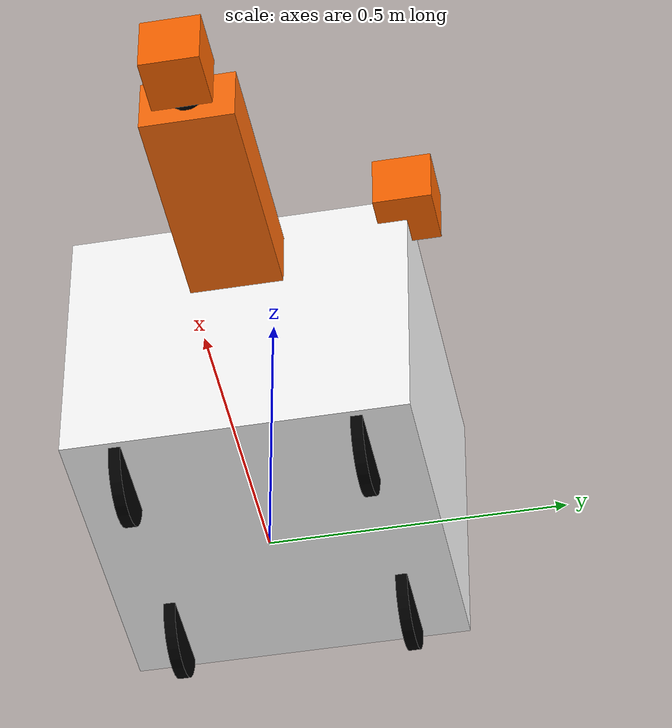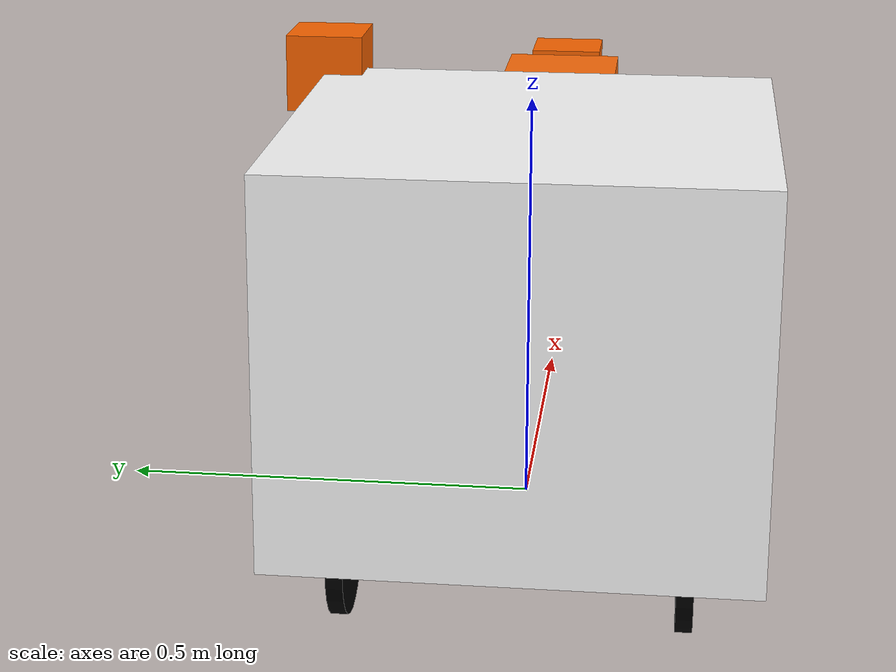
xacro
<?xml version="1.0" ?>
<!-- |    This document was autogenerated by xacro from engineer.urdf                  | -->
<!-- |    EDITING THIS FILE BY HAND IS NOT RECOMMENDED                                 | -->
<robot name="engineer">
  <link name="base_link">
    <visual>
      <origin rpy="0 0 0" xyz="0 0 0.236"/>
      <geometry>
        <box size="0.580 0.580 0.472"/>
      </geometry>
      <material name="white">
        <color rgba="1 1 1 1"/>
      </material>
    </visual>
  </link>
  <joint name="front_left_wheel_joint" type="continuous">
    <parent link="base_link"/>
    <child link="front_left_wheel"/>
    <origin rpy="1.57075 0 0" xyz="0.2 0.2 0"/>
    <axis xyz="0 0 1"/>
  </joint>
  <link name="front_left_wheel">
    <visual>
      <geometry>
        <cylinder length="0.02" radius="0.0791"/>
      </geometry>
      <material name="black">
        <color rgba="0 0 0 1"/>
      </material>
    </visual>
  </link>
  <joint name="front_right_wheel_joint" type="continuous">
    <parent link="base_link"/>
    <child link="front_right_wheel"/>
    <origin rpy="1.57075 0 0" xyz="0.2 -0.2 0"/>
    <axis xyz="0 0 1"/>
  </joint>
  <link name="front_right_wheel">
    <visual>
      <geometry>
        <cylinder length="0.02" radius="0.0791"/>
      </geometry>
      <material name="black">
        <color rgba="0 0 0 1"/>
      </material>
    </visual>
  </link>
  <joint name="rear_left_wheel_joint" type="continuous">
    <parent link="base_link"/>
    <child link="rear_left_wheel"/>
    <origin rpy="1.57075 0 0" xyz="-0.2 0.2 0"/>
    <axis xyz="0 0 1"/>
  </joint>
  <link name="rear_left_wheel">
    <visual>
      <geometry>
        <cylinder length="0.02" radius="0.0791"/>
      </geometry>
      <material name="black">
        <color rgba="0 0 0 1"/>
      </material>
    </visual>
  </link>
  <joint name="rear_right_wheel_joint" type="continuous">
    <parent link="base_link"/>
    <child link="rear_right_wheel"/>
    <origin rpy="1.57075 0 0" xyz="-0.2 -0.2 0"/>
    <axis xyz="0 0 1"/>
  </joint>
  <link name="rear_right_wheel">
    <visual>
      <geometry>
        <cylinder length="0.02" radius="0.0791"/>
      </geometry>
      <material name="black">
        <color rgba="0 0 0 1"/>
      </material>
    </visual>
  </link>
  <joint name="lifting_mechanism_link" type="prismatic">
    <parent link="base_link"/>
    <child link="lifting_mechanism"/>
    <origin xyz="0 0 0.3635"/>
    <axis xyz="0 0 1"/>
    <limit effort="30" lower="0.0" upper="0.920" velocity="0.5"/>
  </joint>
  <link name="lifting_mechanism">
    <visual>
      <geometry>
        <box size="0.550 0.294 0.113"/>
      </geometry>
      <material name="orange">
        <color rgba="1.0 0.4235294117647059 0.0392156862745098 1"/>
      </material>
    </visual>
  </link>
  <joint name="link0" type="revolute">
    <parent link="lifting_mechanism"/>
    <child link="link0"/>
    <origin xyz="0.400 0 0.005"/>
    <axis xyz="0 0 1"/>
    <limit effort="30" lower="-1.57" upper="1.57" velocity="0.5"/>
  </joint>
  <link name="link0">
    <visual>
      <geometry>
        <box size="0.550 0.1582 0.100"/>
      </geometry>
      <material name="orange">
        <color rgba="1.0 0.4235294117647059 0.0392156862745098 1"/>
      </material>
    </visual>
  </link>
  <joint name="link1" type="fixed">
    <parent link="link0"/>
    <child link="link1"/>
    <origin xyz="0.29 0 0"/>
  </joint>
  <link name="link1">
    <visual>
      <geometry>
        <sphere radius="0.03"/>
      </geometry>
      <material name="black">
        <color rgba="0 0 0 1"/>
      </material>
    </visual>
  </link>
  <joint name="link2" type="continuous">
    <parent link="link1"/>
    <child link="link2"/>
    <origin xyz="0.065 0 0"/>
    <axis xyz="1 1 0"/>
  </joint>
  <link name="link2">
    <visual>
      <geometry>
        <box size="0.1 0.1 0.1"/>
      </geometry>
      <material name="orange">
        <color rgba="1 0.4 0 1"/>
      </material>
    </visual>
  </link>
  <joint name="cam_link" type="fixed">
    <parent link="base_link"/>
    <child link="cam_link"/>
    <origin xyz="0.290 0.290 0.472"/>
  </joint>
  <link name="cam_link">
    <visual>
      <geometry>
        <box size="0.1 0.1 0.1"/>
      </geometry>
      <material name="orange">
        <color rgba="1 0.4 0 1"/>
      </material>
    </visual>
  </link>
</robot>
